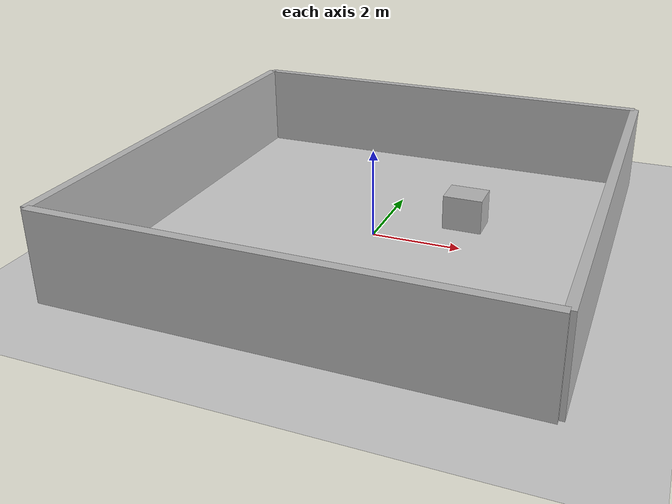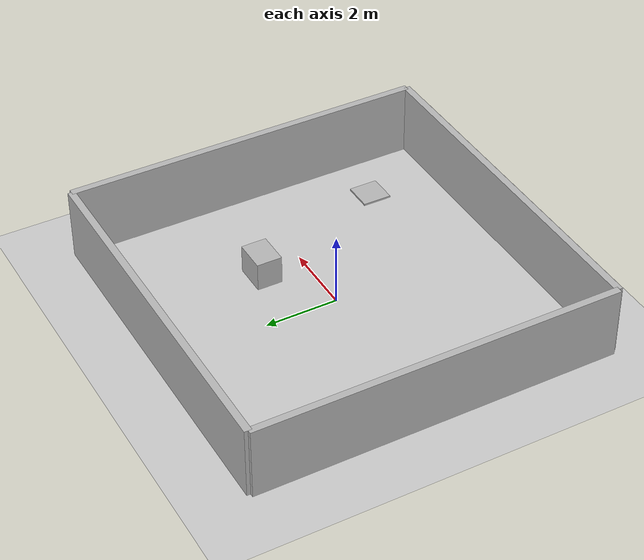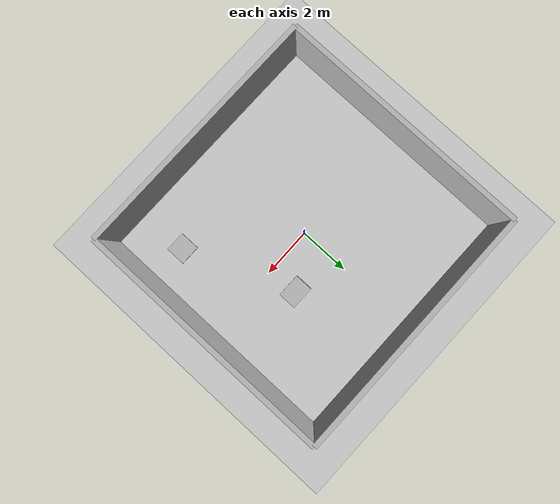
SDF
<?xml version="1.0" ?>
<sdf version="1.9">
  <world name="indoor_delivery_world">

    <physics name="1ms" type="ignored">
      <max_step_size>0.001</max_step_size>
      <real_time_factor>1.0</real_time_factor>
    </physics>

    <plugin
      filename="gz-sim-physics-system"
      name="gz::sim::systems::Physics"/>

    <plugin
      filename="gz-sim-user-commands-system"
      name="gz::sim::systems::UserCommands"/>

    <plugin
      filename="gz-sim-scene-broadcaster-system"
      name="gz::sim::systems::SceneBroadcaster"/>

    <plugin
      filename="gz-sim-sensors-system"
      name="gz::sim::systems::Sensors">
      <render_engine>ogre2</render_engine>
    </plugin>

    <light type="directional" name="sun">
      <cast_shadows>true</cast_shadows>
      <pose>0 0 10 0 0 0</pose>
      <diffuse>0.8 0.8 0.8 1</diffuse>
      <specular>0.2 0.2 0.2 1</specular>
      <direction>-0.5 0.1 -0.9</direction>
    </light>

    <model name="ground_plane">
      <static>true</static>
      <link name="link">
        <collision name="collision">
          <geometry>
            <plane>
              <normal>0 0 1</normal>
              <size>20 20</size>
            </plane>
          </geometry>
        </collision>
        <visual name="visual">
          <geometry>
            <plane>
              <normal>0 0 1</normal>
              <size>20 20</size>
            </plane>
          </geometry>
        </visual>
      </link>
    </model>

    <model name="wall_1">
      <static>true</static>
      <pose>0 5 1 0 0 0</pose>
      <link name="link">
        <collision name="collision">
          <geometry><box><size>10 0.2 2</size></box></geometry>
        </collision>
        <visual name="visual">
          <geometry><box><size>10 0.2 2</size></box></geometry>
        </visual>
      </link>
    </model>

    <model name="wall_2">
      <static>true</static>
      <pose>0 -5 1 0 0 0</pose>
      <link name="link">
        <collision name="collision">
          <geometry><box><size>10 0.2 2</size></box></geometry>
        </collision>
        <visual name="visual">
          <geometry><box><size>10 0.2 2</size></box></geometry>
        </visual>
      </link>
    </model>

    <model name="wall_3">
      <static>true</static>
      <pose>5 0 1 0 0 0</pose>
      <link name="link">
        <collision name="collision">
          <geometry><box><size>0.2 10 2</size></box></geometry>
        </collision>
        <visual name="visual">
          <geometry><box><size>0.2 10 2</size></box></geometry>
        </visual>
      </link>
    </model>

    <model name="wall_4">
      <static>true</static>
      <pose>-5 0 1 0 0 0</pose>
      <link name="link">
        <collision name="collision">
          <geometry><box><size>0.2 10 2</size></box></geometry>
        </collision>
        <visual name="visual">
          <geometry><box><size>0.2 10 2</size></box></geometry>
        </visual>
      </link>
    </model>

    <model name="table_obstacle">
      <static>true</static>
      <pose>1.8 1.2 0.4 0 0 0</pose>
      <link name="link">
        <collision name="collision">
          <geometry><box><size>0.9 0.7 0.8</size></box></geometry>
        </collision>
        <visual name="visual">
          <geometry><box><size>0.9 0.7 0.8</size></box></geometry>
        </visual>
      </link>
    </model>

    <model name="delivery_zone_marker">
      <static>true</static>
      <pose>3.5 -3.0 0.05 0 0 0</pose>
      <link name="link">
        <visual name="visual">
          <geometry><box><size>0.8 0.8 0.05</size></box></geometry>
        </visual>
      </link>
    </model>

  </world>
</sdf>
